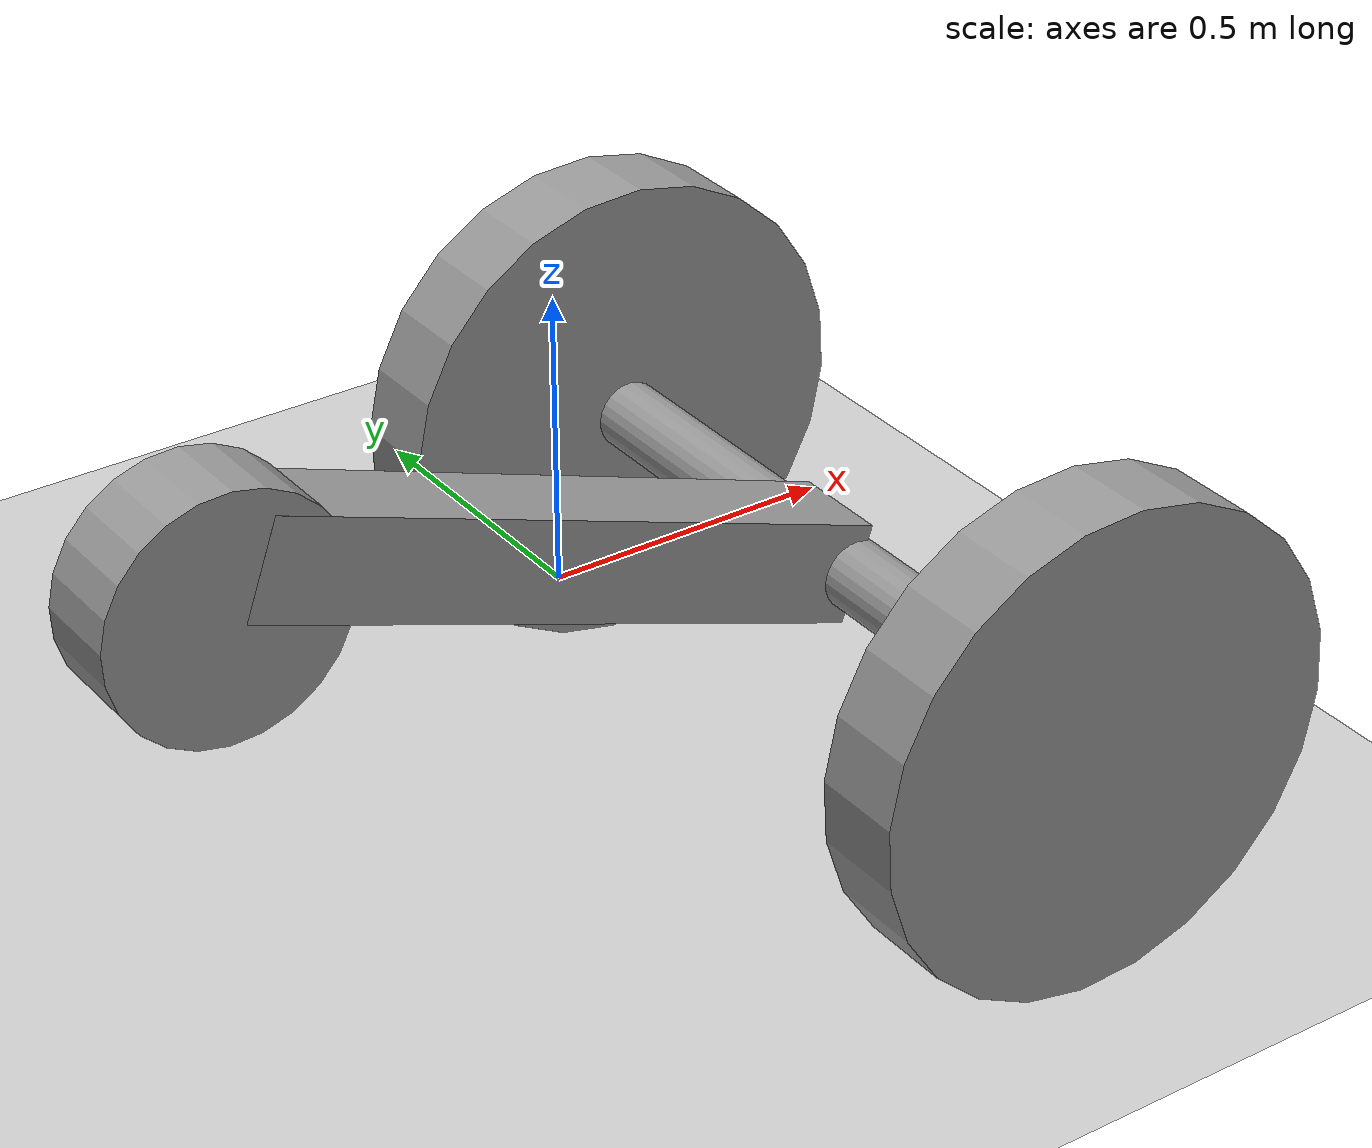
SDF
<sdf version="1.6">
 <world name="default">
  <light name="sun" type="directional">
   <pose>0 0 10 0 -0 0</pose>
   <diffuse>0.8 0.8 0.8 1</diffuse>
   <specular>0.2 0.2 0.2 1</specular>
   <attenuation>
    <range>1000</range>
    <constant>0.9</constant>
    <linear>0.01</linear>
    <quadratic>0.001</quadratic>
   </attenuation>
   <direction>-0.5 0.1 -0.9</direction>
  </light>
  <model name="ground_plane">
   <static>1</static>
   <link name="link">
    <collision name="collision">
     <geometry><plane><normal>0 0 1</normal><size>100 100</size></plane></geometry>
     <surface><friction><ode><mu>100</mu><mu2>50</mu2></ode></friction></surface>
    </collision>
    <visual name="visual">
     <cast_shadows>0</cast_shadows>
     <geometry><plane><normal>0 0 1</normal><size>100 100</size></plane></geometry>
     <material>
      <script><uri>file://media/materials/scripts/gazebo.material</uri><name>Gazebo/Grey</name></script>
     </material>
    </visual>
   </link>
  </model>
  <gravity>0 0 -9.8</gravity>
  <magnetic_field>6e-06 2.3e-05 -4.2e-05</magnetic_field>
  <atmosphere type="adiabatic"/>
  <physics name="default_physics" default="0" type="ode">
   <max_step_size>0.001</max_step_size>
   <real_time_factor>1</real_time_factor>
   <real_time_update_rate>1000</real_time_update_rate>
  </physics>
  <scene><ambient>0.4 0.4 0.4 1</ambient><background>0.7 0.7 0.7 1</background><shadows>1</shadows></scene>
  <spherical_coordinates>
   <surface_model>EARTH_WGS84</surface_model>
   <latitude_deg>0</latitude_deg>
   <longitude_deg>0</longitude_deg>
   <elevation>0</elevation>
   <heading_deg>0</heading_deg>
  </spherical_coordinates>
  <model name="first_robot">
   <pose>0.022204 -0.668592 0.368227 0.000192 0.340739 8e-06</pose>
   <link name="axis">
    <pose>0.003258 0.001433 8.1e-05 1.57054 -0 0</pose>
    <inertial>
     <mass>0.0111297</mass>
     <inertia>
      <ixx>0.000935213</ixx>
      <ixy>0</ixy>
      <ixz>0</ixz>
      <iyy>0.000935213</iyy>
      <iyz>0</iyz>
      <izz>1.54837e-05</izz>
     </inertia>
    </inertial>
    <visual name="visual">
     <geometry><cylinder><radius>0.0527473</radius><length>1</length></cylinder></geometry>
     <material>
      <lighting>1</lighting>
      <script><uri>file://media/materials/scripts/gazebo.material</uri><name>Gazebo/Grey</name></script>
      <ambient>0.3 0.3 0.3 1</ambient>
      <diffuse>0.7 0.7 0.7 1</diffuse>
      <specular>0.01 0.01 0.01 1</specular>
      <emissive>0 0 0 1</emissive>
     </material>
    </visual>
    <collision name="collision">
     <geometry><cylinder><radius>0.052747</radius><length>1</length></cylinder></geometry>
     <surface>
      <friction>
       <ode><mu>1</mu><mu2>1</mu2><fdir1>0 0 0</fdir1><slip1>0</slip1><slip2>0</slip2></ode>
       <torsional>
        <coefficient>1</coefficient>
        <patch_radius>0</patch_radius>
        <surface_radius>0</surface_radius>
        <use_patch_radius>1</use_patch_radius>
        <ode><slip>0</slip></ode>
       </torsional>
      </friction>
      <bounce><restitution_coefficient>0</restitution_coefficient><threshold>1e+06</threshold></bounce>
      <contact>
       <collide_without_contact>0</collide_without_contact>
       <collide_without_contact_bitmask>1</collide_without_contact_bitmask>
       <collide_bitmask>1</collide_bitmask>
       <ode>
        <soft_cfm>0</soft_cfm>
        <soft_erp>0.2</soft_erp>
        <kp>1e+13</kp>
        <kd>1</kd>
        <max_vel>0.01</max_vel>
        <min_depth>0</min_depth>
       </ode>
       <bullet>
        <split_impulse>1</split_impulse>
        <split_impulse_penetration_threshold>-0.01</split_impulse_penetration_threshold>
        <soft_cfm>0</soft_cfm>
        <soft_erp>0.2</soft_erp>
        <kp>1e+13</kp>
        <kd>1</kd>
       </bullet>
      </contact>
     </surface>
    </collision>
   </link>
   <link name="left_wheel">
    <pose>-0.001707 -0.570723 4.1e-05 1.56895 -0 0</pose>
    <inertial>
     <mass>0.0757262</mass>
     <inertia>
      <ixx>0.00269634</ixx>
      <ixy>0</ixy>
      <ixz>0</ixz>
      <iyy>0.00269634</iyy>
      <iyz>0</iyz>
      <izz>0.00514798</izz>
     </inertia>
    </inertial>
    <visual name="visual">
     <geometry><cylinder><radius>0.368733</radius><length>0.139255</length></cylinder></geometry>
     <material>
      <lighting>1</lighting>
      <script><uri>file://media/materials/scripts/gazebo.material</uri><name>Gazebo/Grey</name></script>
      <ambient>0.3 0.3 0.3 1</ambient>
      <diffuse>0.7 0.7 0.7 1</diffuse>
      <specular>0.01 0.01 0.01 1</specular>
      <emissive>0 0 0 1</emissive>
      <shader type="vertex"><normal_map>__default__</normal_map></shader>
     </material>
    </visual>
    <collision name="collision">
     <geometry><cylinder><radius>0.368733</radius><length>0.139255</length></cylinder></geometry>
     <surface>
      <friction>
       <ode><mu>1</mu><mu2>1</mu2><fdir1>0 0 0</fdir1><slip1>0</slip1><slip2>0</slip2></ode>
       <torsional>
        <coefficient>1</coefficient>
        <patch_radius>0</patch_radius>
        <surface_radius>0</surface_radius>
        <use_patch_radius>1</use_patch_radius>
        <ode><slip>0</slip></ode>
       </torsional>
      </friction>
      <bounce><restitution_coefficient>0</restitution_coefficient><threshold>1e+06</threshold></bounce>
      <contact>
       <collide_without_contact>0</collide_without_contact>
       <collide_without_contact_bitmask>1</collide_without_contact_bitmask>
       <collide_bitmask>1</collide_bitmask>
       <ode>
        <soft_cfm>0</soft_cfm>
        <soft_erp>0.2</soft_erp>
        <kp>1e+13</kp>
        <kd>1</kd>
        <max_vel>0.01</max_vel>
        <min_depth>0</min_depth>
       </ode>
       <bullet>
        <split_impulse>1</split_impulse>
        <split_impulse_penetration_threshold>-0.01</split_impulse_penetration_threshold>
        <soft_cfm>0</soft_cfm>
        <soft_erp>0.2</soft_erp>
        <kp>1e+13</kp>
        <kd>1</kd>
       </bullet>
      </contact>
     </surface>
    </collision>
   </link>
   <link name="left_wheel_clone">
    <pose>-1.01781 -0.003162 -0.070015 1.56895 -0 0</pose>
    <inertial>
     <mass>10.0187693</mass>
     <inertia>
      <ixx>0.000188454</ixx>
      <ixy>0</ixy>
      <ixz>0</ixz>
      <iyy>0.000188454</iyy>
      <iyz>0</iyz>
      <izz>0.000316257</izz>
     </inertia>
    </inertial>
    <visual name="visual">
     <geometry><cylinder><radius>0.183571</radius><length>0.139255</length></cylinder></geometry>
     <material>
      <lighting>1</lighting>
      <script><uri>file://media/materials/scripts/gazebo.material</uri><name>Gazebo/Grey</name></script>
      <ambient>0.3 0.3 0.3 1</ambient>
      <diffuse>0.7 0.7 0.7 1</diffuse>
      <specular>0.01 0.01 0.01 1</specular>
      <emissive>0 0 0 1</emissive>
      <shader type="vertex"><normal_map>__default__</normal_map></shader>
     </material>
    </visual>
    <collision name="collision">
     <geometry><cylinder><radius>0.183571</radius><length>0.139255</length></cylinder></geometry>
     <surface>
      <friction>
       <ode><mu>1</mu><mu2>1</mu2><fdir1>0 0 0</fdir1><slip1>0</slip1><slip2>0</slip2></ode>
       <torsional>
        <coefficient>1</coefficient>
        <patch_radius>0</patch_radius>
        <surface_radius>0</surface_radius>
        <use_patch_radius>1</use_patch_radius>
        <ode><slip>0</slip></ode>
       </torsional>
      </friction>
      <bounce><restitution_coefficient>0</restitution_coefficient><threshold>1e+06</threshold></bounce>
      <contact>
       <collide_without_contact>0</collide_without_contact>
       <collide_without_contact_bitmask>1</collide_without_contact_bitmask>
       <collide_bitmask>1</collide_bitmask>
       <ode>
        <soft_cfm>0</soft_cfm>
        <soft_erp>0.2</soft_erp>
        <kp>1e+13</kp>
        <kd>1</kd>
        <max_vel>0.01</max_vel>
        <min_depth>0</min_depth>
       </ode>
       <bullet>
        <split_impulse>1</split_impulse>
        <split_impulse_penetration_threshold>-0.01</split_impulse_penetration_threshold>
        <soft_cfm>0</soft_cfm>
        <soft_erp>0.2</soft_erp>
        <kp>1e+13</kp>
        <kd>1</kd>
       </bullet>
      </contact>
     </surface>
    </collision>
   </link>
   <link name="link_1">
    <pose>-0.493372 0.002687 8.1e-05 0 -0 0</pose>
    <inertial>
     <mass>0.0229898</mass>
     <inertia>
      <ixx>8.80914e-05</ixx>
      <ixy>0</ixy>
      <ixz>0</ixz>
      <iyy>0.00196022</iyy>
      <iyz>0</iyz>
      <izz>0.0019595</izz>
     </inertia>
    </inertial>
    <visual name="visual">
     <geometry><box><size>1 0.151011 0.152239</size></box></geometry>
     <material>
      <lighting>1</lighting>
      <script><uri>file://media/materials/scripts/gazebo.material</uri><name>Gazebo/Grey</name></script>
      <ambient>0.3 0.3 0.3 1</ambient>
      <diffuse>0.7 0.7 0.7 1</diffuse>
      <specular>0.01 0.01 0.01 1</specular>
      <emissive>0 0 0 1</emissive>
     </material>
    </visual>
    <collision name="collision">
     <geometry><box><size>1 0.151011 0.152239</size></box></geometry>
     <surface>
      <friction>
       <ode><mu>1</mu><mu2>1</mu2><fdir1>0 0 0</fdir1><slip1>0</slip1><slip2>0</slip2></ode>
       <torsional>
        <coefficient>1</coefficient>
        <patch_radius>0</patch_radius>
        <surface_radius>0</surface_radius>
        <use_patch_radius>1</use_patch_radius>
        <ode><slip>0</slip></ode>
       </torsional>
      </friction>
      <bounce><restitution_coefficient>0</restitution_coefficient><threshold>1e+06</threshold></bounce>
      <contact>
       <collide_without_contact>0</collide_without_contact>
       <collide_without_contact_bitmask>1</collide_without_contact_bitmask>
       <collide_bitmask>1</collide_bitmask>
       <ode>
        <soft_cfm>0</soft_cfm>
        <soft_erp>0.2</soft_erp>
        <kp>1e+13</kp>
        <kd>1</kd>
        <max_vel>0.01</max_vel>
        <min_depth>0</min_depth>
       </ode>
       <bullet>
        <split_impulse>1</split_impulse>
        <split_impulse_penetration_threshold>-0.01</split_impulse_penetration_threshold>
        <soft_cfm>0</soft_cfm>
        <soft_erp>0.2</soft_erp>
        <kp>1e+13</kp>
        <kd>1</kd>
       </bullet>
      </contact>
     </surface>
    </collision>
   </link>
   <link name="right_wheel">
    <pose>-0.00155 0.569289 -0.000121 1.56895 -0 0</pose>
    <inertial>
     <mass>0.0757262</mass>
     <inertia>
      <ixx>0.00269634</ixx>
      <ixy>0</ixy>
      <ixz>0</ixz>
      <iyy>0.00269634</iyy>
      <iyz>0</iyz>
      <izz>0.00514798</izz>
     </inertia>
    </inertial>
    <visual name="visual">
     <geometry><cylinder><radius>0.368733</radius><length>0.139255</length></cylinder></geometry>
     <material>
      <lighting>1</lighting>
      <script><uri>file://media/materials/scripts/gazebo.material</uri><name>Gazebo/Grey</name></script>
      <ambient>0.3 0.3 0.3 1</ambient>
      <diffuse>0.7 0.7 0.7 1</diffuse>
      <specular>0.01 0.01 0.01 1</specular>
      <emissive>0 0 0 1</emissive>
      <shader type="vertex"><normal_map>__default__</normal_map></shader>
     </material>
    </visual>
    <collision name="collision">
     <geometry><cylinder><radius>0.368733</radius><length>0.139255</length></cylinder></geometry>
     <surface>
      <friction>
       <ode><mu>1</mu><mu2>1</mu2><fdir1>0 0 0</fdir1><slip1>0</slip1><slip2>0</slip2></ode>
       <torsional>
        <coefficient>1</coefficient>
        <patch_radius>0</patch_radius>
        <surface_radius>0</surface_radius>
        <use_patch_radius>1</use_patch_radius>
        <ode><slip>0</slip></ode>
       </torsional>
      </friction>
      <bounce><restitution_coefficient>0</restitution_coefficient><threshold>1e+06</threshold></bounce>
      <contact>
       <collide_without_contact>0</collide_without_contact>
       <collide_without_contact_bitmask>1</collide_without_contact_bitmask>
       <collide_bitmask>1</collide_bitmask>
       <ode>
        <soft_cfm>0</soft_cfm>
        <soft_erp>0.2</soft_erp>
        <kp>1e+13</kp>
        <kd>1</kd>
        <max_vel>0.01</max_vel>
        <min_depth>0</min_depth>
       </ode>
       <bullet>
        <split_impulse>1</split_impulse>
        <split_impulse_penetration_threshold>-0.01</split_impulse_penetration_threshold>
        <soft_cfm>0</soft_cfm>
        <soft_erp>0.2</soft_erp>
        <kp>1e+13</kp>
        <kd>1</kd>
       </bullet>
      </contact>
     </surface>
    </collision>
   </link>
   <joint name="axis_left_wheel" type="revolute">
    <parent>axis</parent>
    <child>left_wheel</child>
    <axis>
     <xyz>0 0 1</xyz>
     <use_parent_model_frame>0</use_parent_model_frame>
     <limit>
      <lower>-1.79769e+308</lower>
      <upper>1.79769e+308</upper>
      <effort>-1</effort>
      <velocity>-1</velocity>
     </limit>
     <dynamics>
      <spring_reference>0</spring_reference>
      <spring_stiffness>0</spring_stiffness>
      <damping>0</damping>
      <friction>0</friction>
     </dynamics>
    </axis>
    <physics>
     <ode><limit><cfm>0</cfm><erp>0.2</erp></limit><suspension><cfm>0</cfm><erp>0.2</erp></suspension></ode>
    </physics>
   </joint>
   <joint name="axis_right_wheel" type="revolute">
    <parent>axis</parent>
    <child>right_wheel</child>
    <axis>
     <xyz>0 0 1</xyz>
     <use_parent_model_frame>0</use_parent_model_frame>
     <limit>
      <lower>-1.79769e+308</lower>
      <upper>1.79769e+308</upper>
      <effort>-1</effort>
      <velocity>-1</velocity>
     </limit>
     <dynamics>
      <spring_reference>0</spring_reference>
      <spring_stiffness>0</spring_stiffness>
      <damping>0</damping>
      <friction>0</friction>
     </dynamics>
    </axis>
    <physics>
     <ode><limit><cfm>0</cfm><erp>0.2</erp></limit><suspension><cfm>0</cfm><erp>0.2</erp></suspension></ode>
    </physics>
   </joint>
   <joint name="link_1_JOINT_0" type="fixed">
    <parent>link_1</parent>
    <child>axis</child>
    <physics>
     <ode><limit><cfm>0</cfm><erp>0.2</erp></limit><suspension><cfm>0</cfm><erp>0.2</erp></suspension></ode>
    </physics>
   </joint>
   <joint name="link_1_JOINT_1" type="revolute">
    <parent>link_1</parent>
    <child>left_wheel_clone</child>
    <axis>
     <xyz>0 0 1</xyz>
     <use_parent_model_frame>0</use_parent_model_frame>
     <limit>
      <lower>-1.79769e+308</lower>
      <upper>1.79769e+308</upper>
      <effort>-1</effort>
      <velocity>-1</velocity>
     </limit>
     <dynamics>
      <spring_reference>0</spring_reference>
      <spring_stiffness>0</spring_stiffness>
      <damping>0</damping>
     </dynamics>
    </axis>
    <physics>
     <ode><limit><cfm>0</cfm><erp>0.2</erp></limit><suspension><cfm>0</cfm><erp>0.2</erp></suspension></ode>
    </physics>
   </joint>
   <static>0</static>
   <plugin name="differential_drive_controller" filename="librobot_ros_diff_drive.so">
    <alwaysOn>true</alwaysOn>
    <legacyMode>true</legacyMode>
    <updateRate>100</updateRate>
    <leftJoint>axis_left_wheel</leftJoint>
    <rightJoint>axis_right_wheel</rightJoint>
    <wheelSeparation>0.66</wheelSeparation>
    <wheelDiameter>0.26</wheelDiameter>
    <torque>5</torque>
    <commandTopic>/robot/cmd_vel</commandTopic>
    <odometryTopic>/robot/odom</odometryTopic>
    <odometryFrame>chassis</odometryFrame>
    <robotBaseFrame>map</robotBaseFrame>
    <publishWheelTF>true</publishWheelTF>
    <publishWheelJointState>true</publishWheelJointState>
   </plugin>
  </model>
 </world>
</sdf>
